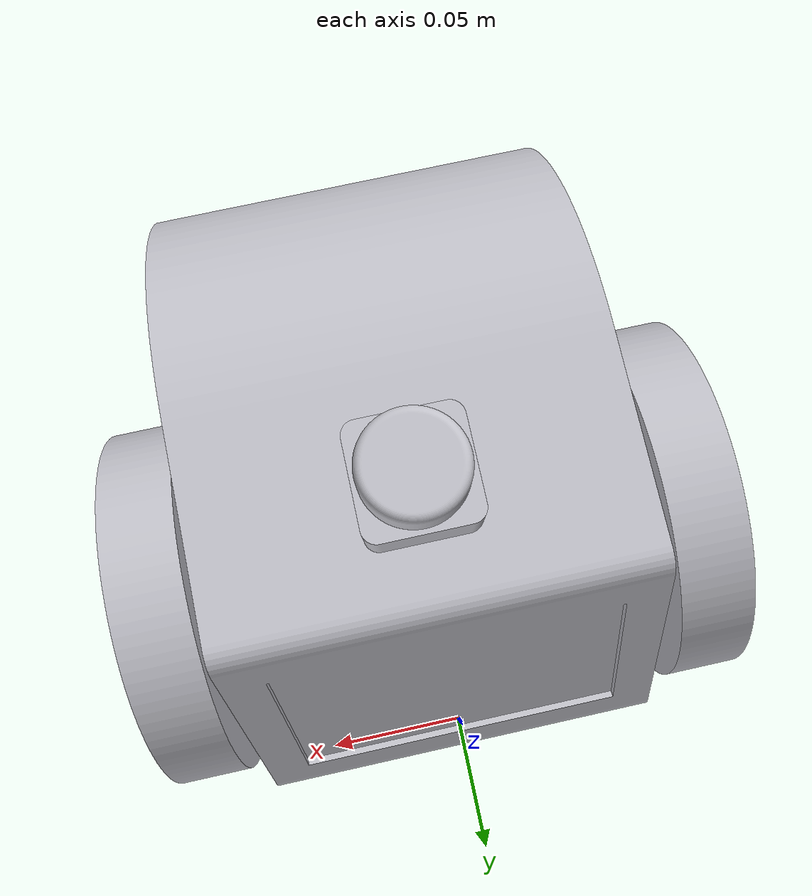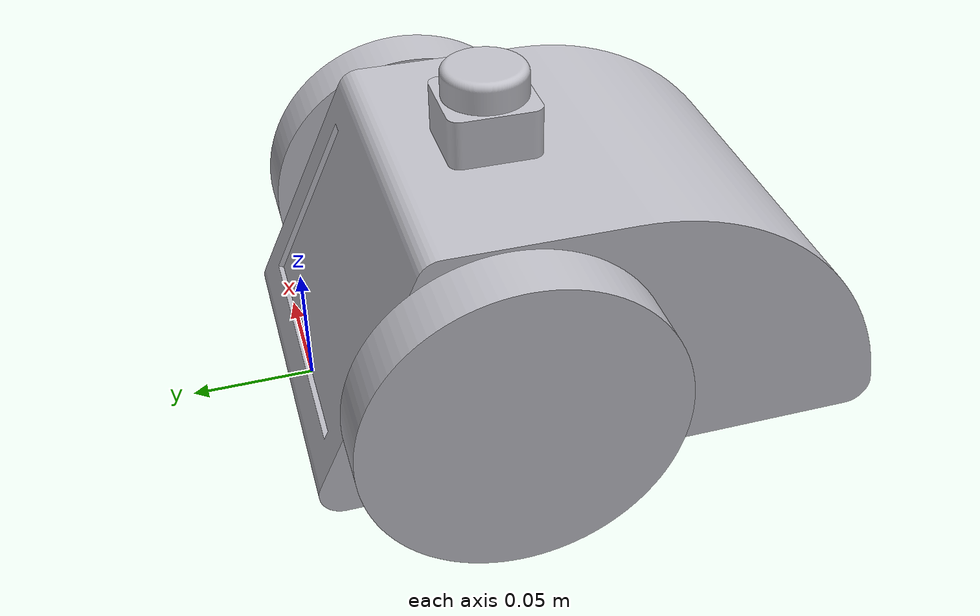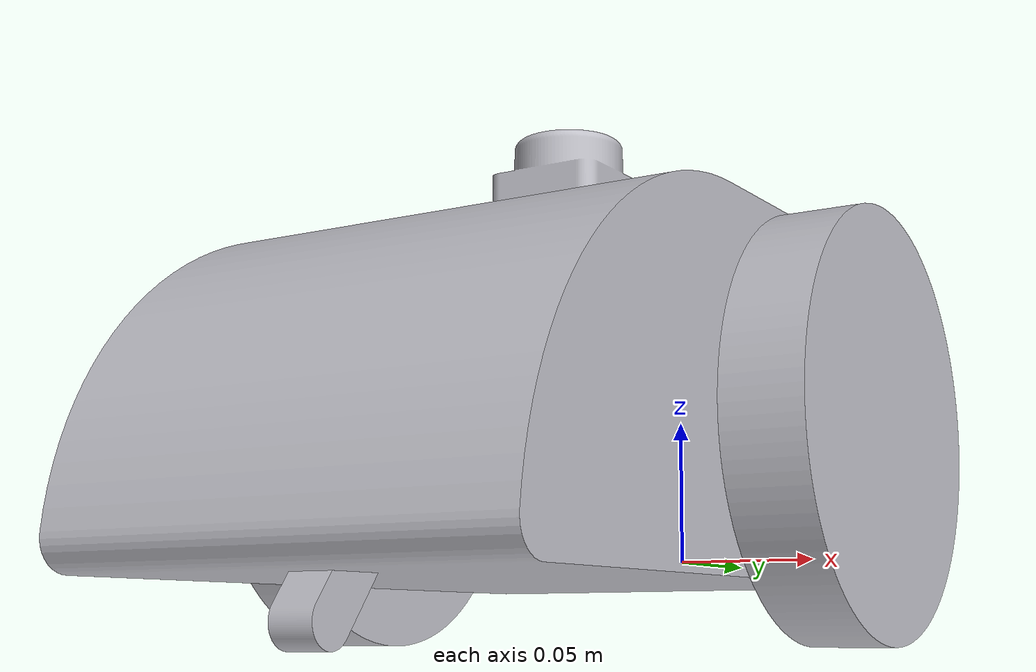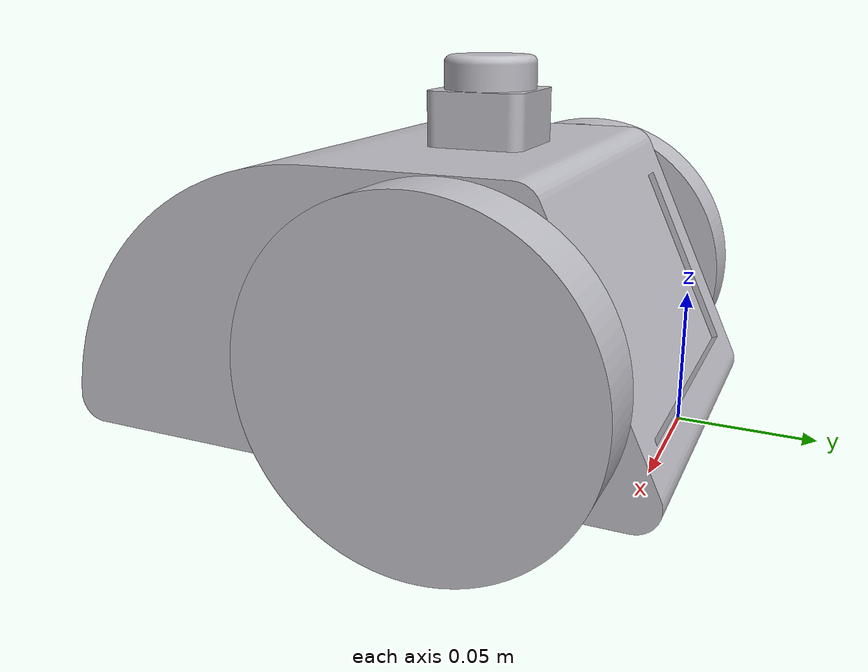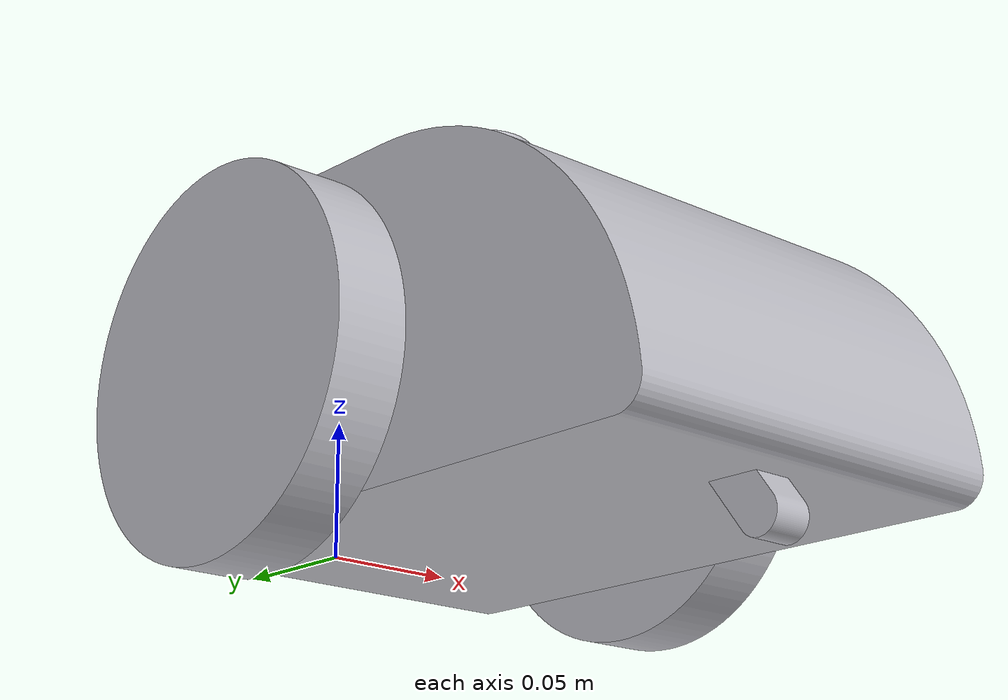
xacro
<?xml version="1.0" ?>
<robot name="URDF" xmlns:xacro="http://www.ros.org/wiki/xacro">

<xacro:include filename="$(find sec_bot_ros2)/urdf/materials.xacro" />
<xacro:include filename="$(find sec_bot_ros2)/urdf/URDF.trans" />
<xacro:include filename="$(find sec_bot_ros2)/urdf/URDF.gazebo" />

<link name="base_link">
</link>

<link name="base_footprint">
</link>

<link name="chassis_link">
  <inertial>
    <origin xyz="0.04504205168611186 -0.10640675775121805 0.04650755178057449" rpy="0 0 0"/>
    <mass value="24.793274274326507"/>
    <inertia ixx="0.107504" iyy="0.069836" izz="0.130887" ixy="-0.0" iyz="-0.002149" ixz="-0.0"/>
  </inertial>
  <visual>
    <origin xyz="0 0 0" rpy="0 0 0"/>
    <geometry>
      <mesh filename="file:/home/fionn/sec_bot_ws/src/sec_bot_ros2/meshes/base_link.stl" scale="0.001 0.001 0.001"/>
    </geometry>
    <material name="silver"/>
  </visual>
  <collision>
    <origin xyz="0 0 0" rpy="0 0 0"/>
    <geometry>
      <mesh filename="file:/home/fionn/sec_bot_ws/src/sec_bot_ros2/meshes/base_link.stl" scale="0.001 0.001 0.001"/>
    </geometry>
  </collision>
</link>

<link name="right_wheel_link">
  <inertial>
    <origin xyz="-0.030541948313887957 -0.001957133202892432 -0.007340509604943389" rpy="0 0 0"/>
    <mass value="2.6048711836780614"/>
    <inertia ixx="0.005503" iyy="0.002887" izz="0.002887" ixy="-0.0" iyz="0.0" ixz="-0.0"/>
  </inertial>
  <visual>
    <origin xyz="-0.075 0.065937 -0.03563" rpy="0 0 0"/>
    <geometry>
      <mesh filename="file:/home/fionn/sec_bot_ws/src/sec_bot_ros2/meshes/right_wheel_link_1.stl" scale="0.001 0.001 0.001"/>
    </geometry>
    <material name="silver"/>
  </visual>
  <collision>
    <origin xyz="-0.075 0.065937 -0.03563" rpy="0 0 0"/>
    <geometry>
      <mesh filename="file:/home/fionn/sec_bot_ws/src/sec_bot_ros2/meshes/right_wheel_link_1.stl" scale="0.001 0.001 0.001"/>
    </geometry>
  </collision>
</link>

<link name="lidar_link">
  <inertial>
    <origin xyz="5.168611249412036e-08 3.1405673649176347e-07 0.01507070000103726" rpy="0 0 0"/>
    <mass value="0.3338072393147599"/>
    <inertia ixx="6.5e-05" iyy="6.5e-05" izz="7.2e-05" ixy="0.0" iyz="0.0" ixz="0.0"/>
  </inertial>
  <visual>
    <origin xyz="-0.0 0.079076 -0.100631" rpy="0 0 0"/>
    <geometry>
      <mesh filename="file:/home/fionn/sec_bot_ws/src/sec_bot_ros2/meshes/lidar_link_1.stl" scale="0.001 0.001 0.001"/>
    </geometry>
    <material name="silver"/>
  </visual>
  <collision>
    <origin xyz="-0.0 0.079076 -0.100631" rpy="0 0 0"/>
    <geometry>
      <mesh filename="file:/home/fionn/sec_bot_ws/src/sec_bot_ros2/meshes/lidar_link_1.stl" scale="0.001 0.001 0.001"/>
    </geometry>
  </collision>
</link>

<link name="caster_link">
  <inertial>
    <origin xyz="5.1686111966764425e-08 -0.005719774129112509 -0.008865869018679712" rpy="0 0 0"/>
    <mass value="0.03528730682813397"/>
    <inertia ixx="2e-06" iyy="2e-06" izz="2e-06" ixy="-0.0" iyz="-1e-06" ixz="-0.0"/>
  </inertial>
  <visual>
    <origin xyz="-0.0 0.196024 0.01" rpy="0 0 0"/>
    <geometry>
      <mesh filename="file:/home/fionn/sec_bot_ws/src/sec_bot_ros2/meshes/caster_link_1.stl" scale="0.001 0.001 0.001"/>
    </geometry>
    <material name="silver"/>
  </visual>
  <collision>
    <origin xyz="-0.0 0.196024 0.01" rpy="0 0 0"/>
    <geometry>
      <mesh filename="file:/home/fionn/sec_bot_ws/src/sec_bot_ros2/meshes/caster_link_1.stl" scale="0.001 0.001 0.001"/>
    </geometry>
  </collision>
</link>

<link name="left_wheel_link">
  <inertial>
    <origin xyz="0 0 0" rpy="0 0 0"/>
    <mass value="2.6048711836780614"/>
    <inertia ixx="0.005503" iyy="0.002887" izz="0.002887" ixy="-0.0" iyz="0.0" ixz="-0.0"/>
  </inertial>
  <visual>
    <origin xyz="0.075 0.065937 -0.03563" rpy="0 0 0"/>
    <geometry>
      <mesh filename="file:/home/fionn/sec_bot_ws/src/sec_bot_ros2/meshes/left_wheel_link_1.stl" scale="0.001 0.001 0.001"/>
    </geometry>
    <material name="silver"/>
  </visual>
  <collision>
    <origin xyz="0.075 0.065937 -0.03563" rpy="0 0 0"/>
    <geometry>
      <mesh filename="file:/home/fionn/sec_bot_ws/src/sec_bot_ros2/meshes/left_wheel_link_1.stl" scale="0.001 0.001 0.001"/>
    </geometry>
  </collision>
</link>

<joint name="base_footprint_joint" type="fixed">
  <origin xyz="0 0 0" rpy = "0 0 0"/>
  <parent link="base_link"/>
  <child link="base_footprint"/>
</joint>

<joint name="chassis_joint" type="fixed">
  <origin xyz="0 0 0" rpy="0 0 0"/>
  <parent link="base_link"/>
  <child link="chassis_link"/>
</joint>

<joint name="right_wheel_joint" type="continuous">
  <origin xyz="0.075 -0.065937 0.03563" rpy="0 0 0"/>
  <parent link="base_link"/>
  <child link="right_wheel_link"/>
  <axis xyz="-1.0 0.0 0.0"/>
</joint>

<joint name="lidar_joint" type="fixed">
  <origin xyz="0.0 -0.079076 0.100631" rpy="0 0 1.570796"/>
  <parent link="base_link"/>
  <child link="lidar_link"/>
</joint>

<joint name="caster_joint" type="fixed">
  <origin xyz="0.0 -0.196024 -0.01" rpy="0 0 0"/>
  <parent link="base_link"/>
  <child link="caster_link"/>
</joint>

<joint name="left_wheel_joint" type="continuous">
  <origin xyz="-0.075 -0.065937 0.03563" rpy="0 0 0"/>
  <parent link="base_link"/>
  <child link="left_wheel_link"/>
  <axis xyz="-1.0 0.0 0.0"/>
</joint>

</robot>

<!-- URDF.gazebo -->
<robot name="URDF" xmlns:xacro="http://www.ros.org/wiki/xacro" >

<xacro:property name="body_color" value="Gazebo/Silver" />

<gazebo>
  <plugin name="control" filename="libgazebo_ros_control.so"/>
</gazebo>
<gazebo reference="base_link">
  <material>${body_color}</material>
  <mu1>0.2</mu1>
  <mu2>0.2</mu2>
  <selfCollide>true</selfCollide>
  <gravity>true</gravity>
</gazebo>

<gazebo reference="right_wheel_link_1">
  <material>${body_color}</material>
  <mu1>0.2</mu1>
  <mu2>0.2</mu2>
  <selfCollide>true</selfCollide>
</gazebo>

<gazebo reference="lidar_link_1">
  <material>${body_color}</material>
  <mu1>0.2</mu1>
  <mu2>0.2</mu2>
  <selfCollide>true</selfCollide>
</gazebo>

<gazebo reference="caster_link_1">
  <material>${body_color}</material>
  <mu1>0.2</mu1>
  <mu2>0.2</mu2>
  <selfCollide>true</selfCollide>
</gazebo>

<gazebo reference="left_wheel_link_1">
  <material>${body_color}</material>
  <mu1>0.2</mu1>
  <mu2>0.2</mu2>
  <selfCollide>true</selfCollide>
</gazebo>

</robot>
